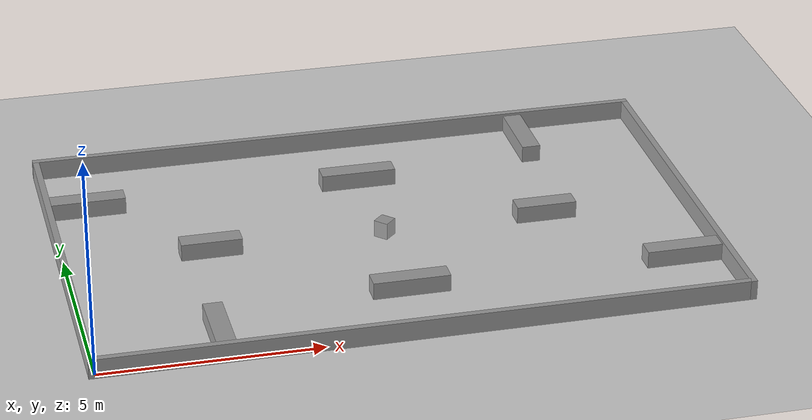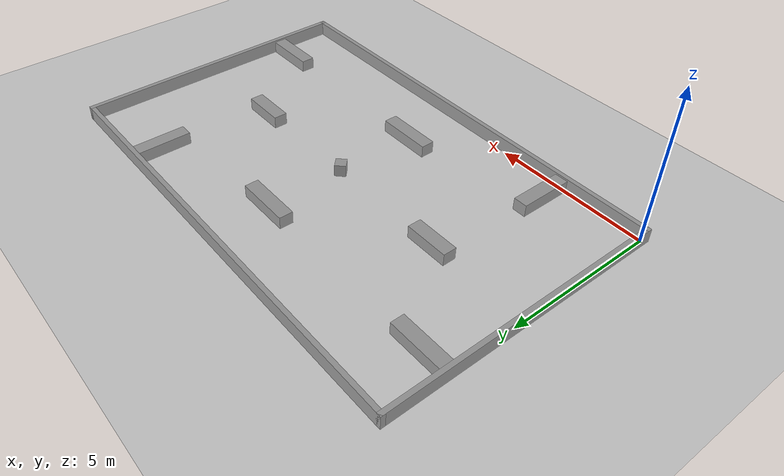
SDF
<sdf version="1.6">
 <world name="default">
  <light name="sun" type="directional">
   <pose>0 0 10 0 -0 0</pose>
   <diffuse>0.8 0.8 0.8 1</diffuse>
   <specular>0.1 0.1 0.1 1</specular>
   <attenuation>
    <range>1000</range>
    <constant>0.9</constant>
    <linear>0.01</linear>
    <quadratic>0.001</quadratic>
   </attenuation>
   <direction>-0.5 0.5 -1</direction>
  </light>
  <model name="ground_plane">
   <static>1</static>
   <link name="link">
    <collision name="collision">
     <geometry><plane><normal>0 0 1</normal><size>100 100</size></plane></geometry>
     <surface><friction><ode><mu>100</mu><mu2>50</mu2></ode></friction></surface>
    </collision>
    <visual name="visual">
     <cast_shadows>0</cast_shadows>
     <geometry><plane><normal>0 0 1</normal><size>100 100</size></plane></geometry>
     <material>
      <script><uri>file://media/materials/scripts/gazebo.material</uri><name>Gazebo/Grey</name></script>
     </material>
    </visual>
   </link>
  </model>
  <gravity>0 0 -9.8</gravity>
  <magnetic_field>6e-06 2.3e-05 -4.2e-05</magnetic_field>
  <atmosphere type="adiabatic"/>
  <physics name="default_physics" default="0" type="ode">
   <max_step_size>0.001</max_step_size>
   <real_time_factor>1</real_time_factor>
   <real_time_update_rate>1000</real_time_update_rate>
  </physics>
  <scene><ambient>0.4 0.4 0.4 1</ambient><background>0.7 0.7 0.7 1</background><shadows>1</shadows></scene>
  <spherical_coordinates>
   <surface_model>EARTH_WGS84</surface_model>
   <latitude_deg>0</latitude_deg>
   <longitude_deg>0</longitude_deg>
   <elevation>0</elevation>
   <heading_deg>0</heading_deg>
  </spherical_coordinates>
  <model name="2020map">
   <pose>7.24982 4.60793 0 0 -0 0</pose>
   <link name="Wall_11">
    <collision name="Wall_11_Collision">
     <geometry><box><size>9.516 0.15 0.46</size></box></geometry>
     <pose>0 0 0.23 0 -0 0</pose>
    </collision>
    <visual name="Wall_11_Visual">
     <pose>0 0 0.23 0 -0 0</pose>
     <geometry><box><size>9.516 0.15 0.46</size></box></geometry>
     <material>
      <script><uri>file://media/materials/scripts/gazebo.material</uri><name>Gazebo/Grey</name></script>
      <ambient>1 1 1 1</ambient>
     </material>
    </visual>
    <pose>-7.325 0 0 0 0 -1.5708</pose>
   </link>
   <link name="Wall_12">
    <collision name="Wall_12_Collision">
     <geometry><box><size>14.8 0.15 0.46</size></box></geometry>
     <pose>0 0 0.23 0 -0 0</pose>
    </collision>
    <visual name="Wall_12_Visual">
     <pose>0 0 0.23 0 -0 0</pose>
     <geometry><box><size>14.8 0.15 0.46</size></box></geometry>
     <material>
      <script><uri>file://media/materials/scripts/gazebo.material</uri><name>Gazebo/Grey</name></script>
      <ambient>1 1 1 1</ambient>
     </material>
    </visual>
    <pose>0 -4.683 0 0 -0 0</pose>
   </link>
   <link name="Wall_16">
    <collision name="Wall_16_Collision">
     <geometry><box><size>14.8 0.15 0.46</size></box></geometry>
     <pose>0 0 0.23 0 -0 0</pose>
    </collision>
    <visual name="Wall_16_Visual">
     <pose>0 0 0.23 0 -0 0</pose>
     <geometry><box><size>14.8 0.15 0.46</size></box></geometry>
     <material>
      <script><uri>file://media/materials/scripts/gazebo.material</uri><name>Gazebo/Grey</name></script>
      <ambient>1 1 1 1</ambient>
     </material>
    </visual>
    <pose>0 4.683 0 0 -0 0</pose>
   </link>
   <link name="Wall_17">
    <collision name="Wall_17_Collision">
     <geometry><box><size>9.516 0.15 0.46</size></box></geometry>
     <pose>0 0 0.23 0 -0 0</pose>
    </collision>
    <visual name="Wall_17_Visual">
     <pose>0 0 0.23 0 -0 0</pose>
     <geometry><box><size>9.516 0.15 0.46</size></box></geometry>
     <material>
      <script><uri>file://media/materials/scripts/gazebo.material</uri><name>Gazebo/Grey</name></script>
      <ambient>1 1 1 1</ambient>
     </material>
    </visual>
    <pose>7.325 0 0 0 0 -1.5708</pose>
   </link>
   <link name="Wall_19">
    <collision name="Wall_19_Collision">
     <geometry><box><size>1.762 0.44 0.4</size></box></geometry>
     <pose>0 0 0.2 0 -0 0</pose>
    </collision>
    <visual name="Wall_19_Visual">
     <pose>0 0 0.2 0 -0 0</pose>
     <geometry><box><size>1.762 0.44 0.4</size></box></geometry>
     <material>
      <script><uri>file://media/materials/scripts/gazebo.material</uri><name>Gazebo/Grey</name></script>
      <ambient>1 1 1 1</ambient>
     </material>
    </visual>
    <pose>0.057 2.657 0 0 -0 0</pose>
   </link>
   <link name="Wall_22">
    <collision name="Wall_22_Collision">
     <geometry><box><size>1.762 0.44 0.4</size></box></geometry>
     <pose>0 0 0.2 0 -0 0</pose>
    </collision>
    <visual name="Wall_22_Visual">
     <pose>0 0 0.2 0 -0 0</pose>
     <geometry><box><size>1.762 0.44 0.4</size></box></geometry>
     <material>
      <script><uri>file://media/materials/scripts/gazebo.material</uri><name>Gazebo/Grey</name></script>
      <ambient>1 1 1 1</ambient>
     </material>
    </visual>
    <pose>-6.385 2.657 0 0 -0 0</pose>
   </link>
   <link name="Wall_24">
    <collision name="Wall_24_Collision">
     <geometry><box><size>1.409 0.44 0.4</size></box></geometry>
     <pose>0 0 0.2 0 -0 0</pose>
    </collision>
    <visual name="Wall_24_Visual">
     <pose>0 0 0.2 0 -0 0</pose>
     <geometry><box><size>1.409 0.44 0.4</size></box></geometry>
     <material>
      <script><uri>file://media/materials/scripts/gazebo.material</uri><name>Gazebo/Grey</name></script>
      <ambient>1 1 1 1</ambient>
     </material>
    </visual>
    <pose>-3.9335 0.074 0 0 -0 3.14159</pose>
   </link>
   <link name="Wall_26">
    <collision name="Wall_26_Collision">
     <geometry><box><size>1.409 0.44 0.4</size></box></geometry>
     <pose>0 0 0.2 0 -0 0</pose>
    </collision>
    <visual name="Wall_26_Visual">
     <pose>0 0 0.2 0 -0 0</pose>
     <geometry><box><size>1.409 0.44 0.4</size></box></geometry>
     <material>
      <script><uri>file://media/materials/scripts/gazebo.material</uri><name>Gazebo/Grey</name></script>
      <ambient>1 1 1 1</ambient>
     </material>
    </visual>
    <pose>3.9335 0.074 0 0 -0 0</pose>
   </link>
   <link name="Wall_28">
    <collision name="Wall_28_Collision">
     <geometry><box><size>1.762 0.44 0.4</size></box></geometry>
     <pose>0 0 0.2 0 -0 0</pose>
    </collision>
    <visual name="Wall_28_Visual">
     <pose>0 0 0.2 0 -0 0</pose>
     <geometry><box><size>1.762 0.44 0.4</size></box></geometry>
     <material>
      <script><uri>file://media/materials/scripts/gazebo.material</uri><name>Gazebo/Grey</name></script>
      <ambient>1 1 1 1</ambient>
     </material>
    </visual>
    <pose>6.3838 -2.657 0 0 -0 3.14159</pose>
   </link>
   <link name="Wall_30">
    <collision name="Wall_30_Collision">
     <geometry><box><size>1.762 0.44 0.4</size></box></geometry>
     <pose>0 0 0.2 0 -0 0</pose>
    </collision>
    <visual name="Wall_30_Visual">
     <pose>0 0 0.2 0 -0 0</pose>
     <geometry><box><size>1.762 0.44 0.4</size></box></geometry>
     <material>
      <script><uri>file://media/materials/scripts/gazebo.material</uri><name>Gazebo/Grey</name></script>
      <ambient>1 1 1 1</ambient>
     </material>
    </visual>
    <pose>0.057 -2.633 0 0 -0 0</pose>
   </link>
   <link name="Wall_32">
    <collision name="Wall_32_Collision">
     <geometry><box><size>1.762 0.44 0.4</size></box></geometry>
     <pose>0 0 0.2 0 -0 0</pose>
    </collision>
    <visual name="Wall_32_Visual">
     <pose>0 0 0.2 0 -0 0</pose>
     <geometry><box><size>1.762 0.44 0.4</size></box></geometry>
     <material>
      <script><uri>file://media/materials/scripts/gazebo.material</uri><name>Gazebo/Grey</name></script>
      <ambient>1 1 1 1</ambient>
     </material>
    </visual>
    <pose>-4.418 -3.734 0 0 -0 1.5708</pose>
   </link>
   <link name="Wall_34">
    <collision name="Wall_34_Collision">
     <geometry><box><size>1.762 0.44 0.4</size></box></geometry>
     <pose>0 0 0.2 0 -0 0</pose>
    </collision>
    <visual name="Wall_34_Visual">
     <pose>0 0 0.2 0 -0 0</pose>
     <geometry><box><size>1.762 0.44 0.4</size></box></geometry>
     <material>
      <script><uri>file://media/materials/scripts/gazebo.material</uri><name>Gazebo/Grey</name></script>
      <ambient>1 1 1 1</ambient>
     </material>
    </visual>
    <pose>4.418 3.734 0 0 0 -1.5708</pose>
   </link>
   <link name="Wall_36">
    <collision name="Wall_36_Collision">
     <geometry><box><size>0.351414 0.35 0.4</size></box></geometry>
     <pose>0 0 0.2 0 -0 0</pose>
    </collision>
    <visual name="Wall_36_Visual">
     <pose>0 0 0.2 0 -0 0</pose>
     <geometry><box><size>0.351414 0.35 0.4</size></box></geometry>
     <material>
      <script><uri>file://media/materials/scripts/gazebo.material</uri><name>Gazebo/Grey</name></script>
      <ambient>1 1 1 1</ambient>
     </material>
    </visual>
    <pose>0.1085 0.0255 0 0 -0 0.785398</pose>
   </link>
   <static>1</static>
  </model>
 </world>
</sdf>
